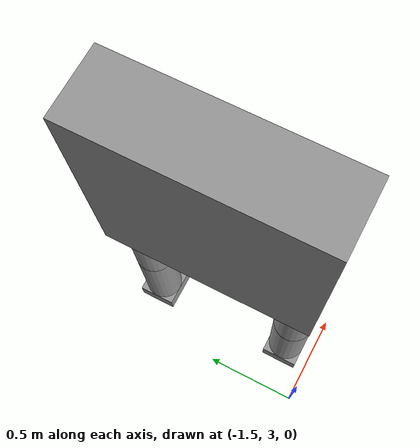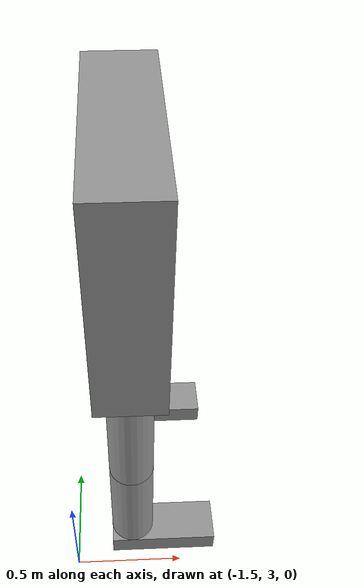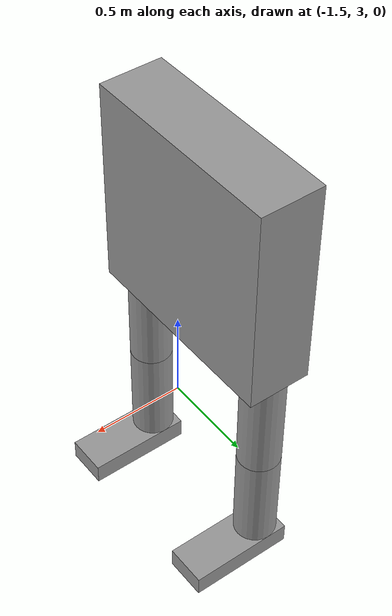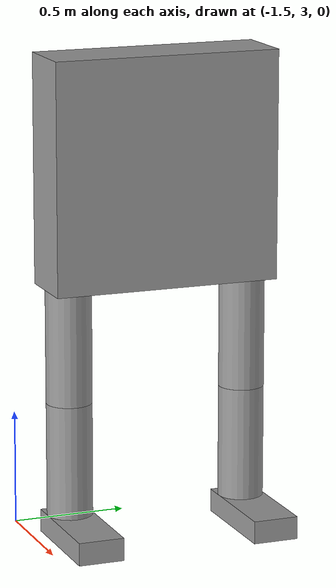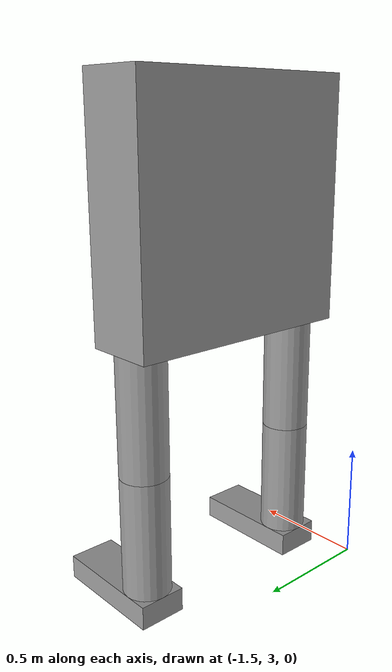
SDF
<?xml version='1.0'?>
<sdf version='1.6'>
  <model name='HumanoidRobot'>
    <link name='link_0'>
      <pose frame=''>-1.22891 3.55741 1.6 0 -0 0</pose>
      <inertial>
        <mass>1</mass>
        <inertia>
          <ixx>0.166667</ixx>
          <ixy>0</ixy>
          <ixz>0</ixz>
          <iyy>0.166667</iyy>
          <iyz>0</iyz>
          <izz>0.166667</izz>
        </inertia>
        <pose frame=''>0 0 0 0 -0 0</pose>
      </inertial>
      <gravity>1</gravity>
      <self_collide>0</self_collide>
      <kinematic>0</kinematic>
      <visual name='visual'>
        <pose frame=''>0 0 0 0 -0 0</pose>
        <geometry>
          <box>
            <size>0.3 1 1</size>
          </box>
        </geometry>
        <material>
          <lighting>1</lighting>
          <script>
            <uri>file://media/materials/scripts/gazebo.material</uri>
            <name>Gazebo/Grey</name>
          </script>
          <shader type='pixel'>
            <normal_map>__default__</normal_map>
          </shader>
          <ambient>0.3 0.3 0.3 1</ambient>
          <diffuse>0.7 0.7 0.7 1</diffuse>
          <specular>0.01 0.01 0.01 1</specular>
          <emissive>0 0 0 1</emissive>
        </material>
        <transparency>0</transparency>
        <cast_shadows>1</cast_shadows>
      </visual>
      <collision name='collision'>
        <laser_retro>0</laser_retro>
        <max_contacts>10</max_contacts>
        <pose frame=''>0 0 0 0 -0 0</pose>
        <geometry>
          <box>
            <size>0.3 1 1</size>
          </box>
        </geometry>
        <surface>
          <friction>
            <ode>
              <mu>1</mu>
              <mu2>1</mu2>
              <fdir1>0 0 0</fdir1>
              <slip1>0</slip1>
              <slip2>0</slip2>
            </ode>
            <torsional>
              <coefficient>1</coefficient>
              <patch_radius>0</patch_radius>
              <surface_radius>0</surface_radius>
              <use_patch_radius>1</use_patch_radius>
              <ode>
                <slip>0</slip>
              </ode>
            </torsional>
          </friction>
          <bounce>
            <restitution_coefficient>0</restitution_coefficient>
            <threshold>1e+06</threshold>
          </bounce>
          <contact>
            <collide_without_contact>0</collide_without_contact>
            <collide_without_contact_bitmask>1</collide_without_contact_bitmask>
            <collide_bitmask>1</collide_bitmask>
            <ode>
              <soft_cfm>0</soft_cfm>
              <soft_erp>0.2</soft_erp>
              <kp>1e+13</kp>
              <kd>1</kd>
              <max_vel>0.01</max_vel>
              <min_depth>0</min_depth>
            </ode>
            <bullet>
              <split_impulse>1</split_impulse>
              <split_impulse_penetration_threshold>-0.01</split_impulse_penetration_threshold>
              <soft_cfm>0</soft_cfm>
              <soft_erp>0.2</soft_erp>
              <kp>1e+13</kp>
              <kd>1</kd>
            </bullet>
          </contact>
        </surface>
      </collision>
    </link>
    <link name='link_1'>
      <pose frame=''>-1.22891 3.15741 0.849998 0 -0 0</pose>
      <inertial>
        <mass>1</mass>
        <inertia>
          <ixx>0.145833</ixx>
          <ixy>0</ixy>
          <ixz>0</ixz>
          <iyy>0.145833</iyy>
          <iyz>0</iyz>
          <izz>0.125</izz>
        </inertia>
        <pose frame=''>0 0 0 0 -0 0</pose>
      </inertial>
      <gravity>1</gravity>
      <self_collide>0</self_collide>
      <kinematic>0</kinematic>
      <visual name='visual'>
        <pose frame=''>0 0 0 0 -0 0</pose>
        <geometry>
          <cylinder>
            <radius>0.1</radius>
            <length>0.5</length>
          </cylinder>
        </geometry>
        <material>
          <lighting>1</lighting>
          <script>
            <uri>file://media/materials/scripts/gazebo.material</uri>
            <name>Gazebo/Grey</name>
          </script>
          <shader type='pixel'>
            <normal_map>__default__</normal_map>
          </shader>
          <ambient>0.3 0.3 0.3 1</ambient>
          <diffuse>0.7 0.7 0.7 1</diffuse>
          <specular>0.01 0.01 0.01 1</specular>
          <emissive>0 0 0 1</emissive>
        </material>
        <transparency>0</transparency>
        <cast_shadows>1</cast_shadows>
      </visual>
      <collision name='collision'>
        <laser_retro>0</laser_retro>
        <max_contacts>10</max_contacts>
        <pose frame=''>0 0 0 0 -0 0</pose>
        <geometry>
          <cylinder>
            <radius>0.1</radius>
            <length>0.5</length>
          </cylinder>
        </geometry>
        <surface>
          <friction>
            <ode>
              <mu>1</mu>
              <mu2>1</mu2>
              <fdir1>0 0 0</fdir1>
              <slip1>0</slip1>
              <slip2>0</slip2>
            </ode>
            <torsional>
              <coefficient>1</coefficient>
              <patch_radius>0</patch_radius>
              <surface_radius>0</surface_radius>
              <use_patch_radius>1</use_patch_radius>
              <ode>
                <slip>0</slip>
              </ode>
            </torsional>
          </friction>
          <bounce>
            <restitution_coefficient>0</restitution_coefficient>
            <threshold>1e+06</threshold>
          </bounce>
          <contact>
            <collide_without_contact>0</collide_without_contact>
            <collide_without_contact_bitmask>1</collide_without_contact_bitmask>
            <collide_bitmask>1</collide_bitmask>
            <ode>
              <soft_cfm>0</soft_cfm>
              <soft_erp>0.2</soft_erp>
              <kp>1e+13</kp>
              <kd>1</kd>
              <max_vel>0.01</max_vel>
              <min_depth>0</min_depth>
            </ode>
            <bullet>
              <split_impulse>1</split_impulse>
              <split_impulse_penetration_threshold>-0.01</split_impulse_penetration_threshold>
              <soft_cfm>0</soft_cfm>
              <soft_erp>0.2</soft_erp>
              <kp>1e+13</kp>
              <kd>1</kd>
            </bullet>
          </contact>
        </surface>
      </collision>
    </link>
    <link name='link_1_clone'>
      <pose frame=''>-1.22891 3.95741 0.849998 0 -0 0</pose>
      <inertial>
        <mass>1</mass>
        <inertia>
          <ixx>0.145833</ixx>
          <ixy>0</ixy>
          <ixz>0</ixz>
          <iyy>0.145833</iyy>
          <iyz>0</iyz>
          <izz>0.125</izz>
        </inertia>
        <pose frame=''>0 0 0 0 -0 0</pose>
      </inertial>
      <self_collide>0</self_collide>
      <kinematic>0</kinematic>
      <gravity>1</gravity>
      <visual name='visual'>
        <pose frame=''>0 0 0 0 -0 0</pose>
        <geometry>
          <cylinder>
            <radius>0.1</radius>
            <length>0.5</length>
          </cylinder>
        </geometry>
        <material>
          <lighting>1</lighting>
          <script>
            <uri>file://media/materials/scripts/gazebo.material</uri>
            <name>Gazebo/Grey</name>
          </script>
          <shader type='pixel'>
            <normal_map>__default__</normal_map>
          </shader>
          <ambient>0.3 0.3 0.3 1</ambient>
          <diffuse>0.7 0.7 0.7 1</diffuse>
          <specular>0.01 0.01 0.01 1</specular>
          <emissive>0 0 0 1</emissive>
        </material>
        <transparency>0</transparency>
        <cast_shadows>1</cast_shadows>
      </visual>
      <collision name='collision'>
        <laser_retro>0</laser_retro>
        <max_contacts>10</max_contacts>
        <pose frame=''>0 0 0 0 -0 0</pose>
        <geometry>
          <cylinder>
            <radius>0.1</radius>
            <length>0.5</length>
          </cylinder>
        </geometry>
        <surface>
          <friction>
            <ode>
              <mu>1</mu>
              <mu2>1</mu2>
              <fdir1>0 0 0</fdir1>
              <slip1>0</slip1>
              <slip2>0</slip2>
            </ode>
            <torsional>
              <coefficient>1</coefficient>
              <patch_radius>0</patch_radius>
              <surface_radius>0</surface_radius>
              <use_patch_radius>1</use_patch_radius>
              <ode>
                <slip>0</slip>
              </ode>
            </torsional>
          </friction>
          <bounce>
            <restitution_coefficient>0</restitution_coefficient>
            <threshold>1e+06</threshold>
          </bounce>
          <contact>
            <collide_without_contact>0</collide_without_contact>
            <collide_without_contact_bitmask>1</collide_without_contact_bitmask>
            <collide_bitmask>1</collide_bitmask>
            <ode>
              <soft_cfm>0</soft_cfm>
              <soft_erp>0.2</soft_erp>
              <kp>1e+13</kp>
              <kd>1</kd>
              <max_vel>0.01</max_vel>
              <min_depth>0</min_depth>
            </ode>
            <bullet>
              <split_impulse>1</split_impulse>
              <split_impulse_penetration_threshold>-0.01</split_impulse_penetration_threshold>
              <soft_cfm>0</soft_cfm>
              <soft_erp>0.2</soft_erp>
              <kp>1e+13</kp>
              <kd>1</kd>
            </bullet>
          </contact>
        </surface>
      </collision>
    </link>
    <link name='link_1_clone_0'>
      <pose frame=''>-1.22891 3.15741 0.349998 0 -0 0</pose>
      <inertial>
        <mass>1</mass>
        <inertia>
          <ixx>0.145833</ixx>
          <ixy>0</ixy>
          <ixz>0</ixz>
          <iyy>0.145833</iyy>
          <iyz>0</iyz>
          <izz>0.125</izz>
        </inertia>
        <pose frame=''>0 0 0 0 -0 0</pose>
      </inertial>
      <self_collide>0</self_collide>
      <kinematic>0</kinematic>
      <gravity>1</gravity>
      <visual name='visual'>
        <pose frame=''>0 0 0 0 -0 0</pose>
        <geometry>
          <cylinder>
            <radius>0.1</radius>
            <length>0.5</length>
          </cylinder>
        </geometry>
        <material>
          <lighting>1</lighting>
          <script>
            <uri>file://media/materials/scripts/gazebo.material</uri>
            <name>Gazebo/Grey</name>
          </script>
          <shader type='pixel'>
            <normal_map>__default__</normal_map>
          </shader>
          <ambient>0.3 0.3 0.3 1</ambient>
          <diffuse>0.7 0.7 0.7 1</diffuse>
          <specular>0.01 0.01 0.01 1</specular>
          <emissive>0 0 0 1</emissive>
        </material>
        <transparency>0</transparency>
        <cast_shadows>1</cast_shadows>
      </visual>
      <collision name='collision'>
        <laser_retro>0</laser_retro>
        <max_contacts>10</max_contacts>
        <pose frame=''>0 0 0 0 -0 0</pose>
        <geometry>
          <cylinder>
            <radius>0.1</radius>
            <length>0.5</length>
          </cylinder>
        </geometry>
        <surface>
          <friction>
            <ode>
              <mu>1</mu>
              <mu2>1</mu2>
              <fdir1>0 0 0</fdir1>
              <slip1>0</slip1>
              <slip2>0</slip2>
            </ode>
            <torsional>
              <coefficient>1</coefficient>
              <patch_radius>0</patch_radius>
              <surface_radius>0</surface_radius>
              <use_patch_radius>1</use_patch_radius>
              <ode>
                <slip>0</slip>
              </ode>
            </torsional>
          </friction>
          <bounce>
            <restitution_coefficient>0</restitution_coefficient>
            <threshold>1e+06</threshold>
          </bounce>
          <contact>
            <collide_without_contact>0</collide_without_contact>
            <collide_without_contact_bitmask>1</collide_without_contact_bitmask>
            <collide_bitmask>1</collide_bitmask>
            <ode>
              <soft_cfm>0</soft_cfm>
              <soft_erp>0.2</soft_erp>
              <kp>1e+13</kp>
              <kd>1</kd>
              <max_vel>0.01</max_vel>
              <min_depth>0</min_depth>
            </ode>
            <bullet>
              <split_impulse>1</split_impulse>
              <split_impulse_penetration_threshold>-0.01</split_impulse_penetration_threshold>
              <soft_cfm>0</soft_cfm>
              <soft_erp>0.2</soft_erp>
              <kp>1e+13</kp>
              <kd>1</kd>
            </bullet>
          </contact>
        </surface>
      </collision>
    </link>
    <link name='link_1_clone_1'>
      <pose frame=''>-1.22891 3.95741 0.349998 0 -0 0</pose>
      <inertial>
        <mass>1</mass>
        <inertia>
          <ixx>0.145833</ixx>
          <ixy>0</ixy>
          <ixz>0</ixz>
          <iyy>0.145833</iyy>
          <iyz>0</iyz>
          <izz>0.125</izz>
        </inertia>
        <pose frame=''>0 0 0 0 -0 0</pose>
      </inertial>
      <self_collide>0</self_collide>
      <kinematic>0</kinematic>
      <gravity>1</gravity>
      <visual name='visual'>
        <pose frame=''>0 0 0 0 -0 0</pose>
        <geometry>
          <cylinder>
            <radius>0.1</radius>
            <length>0.5</length>
          </cylinder>
        </geometry>
        <material>
          <lighting>1</lighting>
          <script>
            <uri>file://media/materials/scripts/gazebo.material</uri>
            <name>Gazebo/Grey</name>
          </script>
          <shader type='pixel'>
            <normal_map>__default__</normal_map>
          </shader>
          <ambient>0.3 0.3 0.3 1</ambient>
          <diffuse>0.7 0.7 0.7 1</diffuse>
          <specular>0.01 0.01 0.01 1</specular>
          <emissive>0 0 0 1</emissive>
        </material>
        <transparency>0</transparency>
        <cast_shadows>1</cast_shadows>
      </visual>
      <collision name='collision'>
        <laser_retro>0</laser_retro>
        <max_contacts>10</max_contacts>
        <pose frame=''>0 0 0 0 -0 0</pose>
        <geometry>
          <cylinder>
            <radius>0.1</radius>
            <length>0.5</length>
          </cylinder>
        </geometry>
        <surface>
          <friction>
            <ode>
              <mu>1</mu>
              <mu2>1</mu2>
              <fdir1>0 0 0</fdir1>
              <slip1>0</slip1>
              <slip2>0</slip2>
            </ode>
            <torsional>
              <coefficient>1</coefficient>
              <patch_radius>0</patch_radius>
              <surface_radius>0</surface_radius>
              <use_patch_radius>1</use_patch_radius>
              <ode>
                <slip>0</slip>
              </ode>
            </torsional>
          </friction>
          <bounce>
            <restitution_coefficient>0</restitution_coefficient>
            <threshold>1e+06</threshold>
          </bounce>
          <contact>
            <collide_without_contact>0</collide_without_contact>
            <collide_without_contact_bitmask>1</collide_without_contact_bitmask>
            <collide_bitmask>1</collide_bitmask>
            <ode>
              <soft_cfm>0</soft_cfm>
              <soft_erp>0.2</soft_erp>
              <kp>1e+13</kp>
              <kd>1</kd>
              <max_vel>0.01</max_vel>
              <min_depth>0</min_depth>
            </ode>
            <bullet>
              <split_impulse>1</split_impulse>
              <split_impulse_penetration_threshold>-0.01</split_impulse_penetration_threshold>
              <soft_cfm>0</soft_cfm>
              <soft_erp>0.2</soft_erp>
              <kp>1e+13</kp>
              <kd>1</kd>
            </bullet>
          </contact>
        </surface>
      </collision>
    </link>
    <link name='link_4'>
      <pose frame=''>-1.07891 3.95741 0.049998 0 -0 0</pose>
      <inertial>
        <mass>1</mass>
        <inertia>
          <ixx>0.166667</ixx>
          <ixy>0</ixy>
          <ixz>0</ixz>
          <iyy>0.166667</iyy>
          <iyz>0</iyz>
          <izz>0.166667</izz>
        </inertia>
        <pose frame=''>0 0 0 0 -0 0</pose>
      </inertial>
      <gravity>1</gravity>
      <self_collide>0</self_collide>
      <kinematic>0</kinematic>
      <visual name='visual'>
        <pose frame=''>0 0 0 0 -0 0</pose>
        <geometry>
          <box>
            <size>0.5 0.2 0.1</size>
          </box>
        </geometry>
        <material>
          <lighting>1</lighting>
          <script>
            <uri>file://media/materials/scripts/gazebo.material</uri>
            <name>Gazebo/Grey</name>
          </script>
          <shader type='pixel'>
            <normal_map>__default__</normal_map>
          </shader>
          <ambient>0.3 0.3 0.3 1</ambient>
          <diffuse>0.7 0.7 0.7 1</diffuse>
          <specular>0.01 0.01 0.01 1</specular>
          <emissive>0 0 0 1</emissive>
        </material>
        <transparency>0</transparency>
        <cast_shadows>1</cast_shadows>
      </visual>
      <collision name='collision'>
        <laser_retro>0</laser_retro>
        <max_contacts>10</max_contacts>
        <pose frame=''>0 0 0 0 -0 0</pose>
        <geometry>
          <box>
            <size>0.5 0.2 0.1</size>
          </box>
        </geometry>
        <surface>
          <friction>
            <ode>
              <mu>1</mu>
              <mu2>1</mu2>
              <fdir1>0 0 0</fdir1>
              <slip1>0</slip1>
              <slip2>0</slip2>
            </ode>
            <torsional>
              <coefficient>1</coefficient>
              <patch_radius>0</patch_radius>
              <surface_radius>0</surface_radius>
              <use_patch_radius>1</use_patch_radius>
              <ode>
                <slip>0</slip>
              </ode>
            </torsional>
          </friction>
          <bounce>
            <restitution_coefficient>0</restitution_coefficient>
            <threshold>1e+06</threshold>
          </bounce>
          <contact>
            <collide_without_contact>0</collide_without_contact>
            <collide_without_contact_bitmask>1</collide_without_contact_bitmask>
            <collide_bitmask>1</collide_bitmask>
            <ode>
              <soft_cfm>0</soft_cfm>
              <soft_erp>0.2</soft_erp>
              <kp>1e+13</kp>
              <kd>1</kd>
              <max_vel>0.01</max_vel>
              <min_depth>0</min_depth>
            </ode>
            <bullet>
              <split_impulse>1</split_impulse>
              <split_impulse_penetration_threshold>-0.01</split_impulse_penetration_threshold>
              <soft_cfm>0</soft_cfm>
              <soft_erp>0.2</soft_erp>
              <kp>1e+13</kp>
              <kd>1</kd>
            </bullet>
          </contact>
        </surface>
      </collision>
    </link>
    <link name='link_4_clone'>
      <pose frame=''>-1.07891 3.15741 0.049998 0 -0 0</pose>
      <inertial>
        <mass>1</mass>
        <inertia>
          <ixx>0.166667</ixx>
          <ixy>0</ixy>
          <ixz>0</ixz>
          <iyy>0.166667</iyy>
          <iyz>0</iyz>
          <izz>0.166667</izz>
        </inertia>
        <pose frame=''>0 0 0 0 -0 0</pose>
      </inertial>
      <self_collide>0</self_collide>
      <kinematic>0</kinematic>
      <visual name='visual'>
        <pose frame=''>0 0 0 0 -0 0</pose>
        <geometry>
          <box>
            <size>0.5 0.2 0.1</size>
          </box>
        </geometry>
        <material>
          <lighting>1</lighting>
          <script>
            <uri>file://media/materials/scripts/gazebo.material</uri>
            <name>Gazebo/Grey</name>
          </script>
          <shader type='pixel'>
            <normal_map>__default__</normal_map>
          </shader>
          <ambient>0.3 0.3 0.3 1</ambient>
          <diffuse>0.7 0.7 0.7 1</diffuse>
          <specular>0.01 0.01 0.01 1</specular>
          <emissive>0 0 0 1</emissive>
        </material>
        <transparency>0</transparency>
        <cast_shadows>1</cast_shadows>
      </visual>
      <collision name='collision'>
        <laser_retro>0</laser_retro>
        <max_contacts>10</max_contacts>
        <pose frame=''>0 0 0 0 -0 0</pose>
        <geometry>
          <box>
            <size>0.5 0.2 0.1</size>
          </box>
        </geometry>
        <surface>
          <friction>
            <ode>
              <mu>1</mu>
              <mu2>1</mu2>
              <fdir1>0 0 0</fdir1>
              <slip1>0</slip1>
              <slip2>0</slip2>
            </ode>
            <torsional>
              <coefficient>1</coefficient>
              <patch_radius>0</patch_radius>
              <surface_radius>0</surface_radius>
              <use_patch_radius>1</use_patch_radius>
              <ode>
                <slip>0</slip>
              </ode>
            </torsional>
          </friction>
          <bounce>
            <restitution_coefficient>0</restitution_coefficient>
            <threshold>1e+06</threshold>
          </bounce>
          <contact>
            <collide_without_contact>0</collide_without_contact>
            <collide_without_contact_bitmask>1</collide_without_contact_bitmask>
            <collide_bitmask>1</collide_bitmask>
            <ode>
              <soft_cfm>0</soft_cfm>
              <soft_erp>0.2</soft_erp>
              <kp>1e+13</kp>
              <kd>1</kd>
              <max_vel>0.01</max_vel>
              <min_depth>0</min_depth>
            </ode>
            <bullet>
              <split_impulse>1</split_impulse>
              <split_impulse_penetration_threshold>-0.01</split_impulse_penetration_threshold>
              <soft_cfm>0</soft_cfm>
              <soft_erp>0.2</soft_erp>
              <kp>1e+13</kp>
              <kd>1</kd>
            </bullet>
          </contact>
        </surface>
      </collision>
    </link>
    <joint name='link_0_JOINT_0' type='revolute'>
      <parent>link_0</parent>
      <child>link_1</child>
      <pose frame=''>0 0 0.25 0 0.03 0</pose>
      <axis>
        <xyz>0 0 1</xyz>
        <use_parent_model_frame>1</use_parent_model_frame>
        <limit>
          <lower>-1.79769e+308</lower>
          <upper>1.79769e+308</upper>
          <effort>-1</effort>
          <velocity>-1</velocity>
        </limit>
        <dynamics>
          <spring_reference>0</spring_reference>
          <spring_stiffness>0</spring_stiffness>
          <damping>0</damping>
          <friction>0</friction>
        </dynamics>
      </axis>
      <physics>
        <ode>
          <limit>
            <cfm>0</cfm>
            <erp>0.2</erp>
          </limit>
          <suspension>
            <cfm>0</cfm>
            <erp>0.2</erp>
          </suspension>
        </ode>
      </physics>
    </joint>
    <joint name='link_0_JOINT_1' type='revolute'>
      <parent>link_0</parent>
      <child>link_1_clone</child>
      <pose frame=''>0 0 0.25 0 -0 0</pose>
      <axis>
        <xyz>0 0 1</xyz>
        <use_parent_model_frame>0</use_parent_model_frame>
        <limit>
          <lower>-1.79769e+308</lower>
          <upper>1.79769e+308</upper>
          <effort>-1</effort>
          <velocity>-1</velocity>
        </limit>
        <dynamics>
          <spring_reference>0</spring_reference>
          <spring_stiffness>0</spring_stiffness>
          <damping>0</damping>
          <friction>0</friction>
        </dynamics>
      </axis>
      <physics>
        <ode>
          <limit>
            <cfm>0</cfm>
            <erp>0.2</erp>
          </limit>
          <suspension>
            <cfm>0</cfm>
            <erp>0.2</erp>
          </suspension>
        </ode>
      </physics>
    </joint>
    <joint name='link_1_JOINT_2' type='revolute'>
      <parent>link_1</parent>
      <child>link_1_clone_0</child>
      <pose frame=''>0 0 0.25 0 -0 0</pose>
      <axis>
        <xyz>0 0 1</xyz>
        <use_parent_model_frame>0</use_parent_model_frame>
        <limit>
          <lower>-1.79769e+308</lower>
          <upper>1.79769e+308</upper>
          <effort>-1</effort>
          <velocity>-1</velocity>
        </limit>
        <dynamics>
          <spring_reference>0</spring_reference>
          <spring_stiffness>0</spring_stiffness>
          <damping>0</damping>
          <friction>0</friction>
        </dynamics>
      </axis>
      <physics>
        <ode>
          <limit>
            <cfm>0</cfm>
            <erp>0.2</erp>
          </limit>
          <suspension>
            <cfm>0</cfm>
            <erp>0.2</erp>
          </suspension>
        </ode>
      </physics>
    </joint>
    <joint name='link_1_clone_0_JOINT_4' type='revolute'>
      <parent>link_1_clone_0</parent>
      <child>link_4_clone</child>
      <pose frame=''>-0.15 0 0 0 -0 0</pose>
      <axis>
        <xyz>0 0 1</xyz>
        <use_parent_model_frame>0</use_parent_model_frame>
        <limit>
          <lower>-1.79769e+308</lower>
          <upper>1.79769e+308</upper>
          <effort>-1</effort>
          <velocity>-1</velocity>
        </limit>
        <dynamics>
          <spring_reference>0</spring_reference>
          <spring_stiffness>0</spring_stiffness>
          <damping>0</damping>
          <friction>0</friction>
        </dynamics>
      </axis>
      <physics>
        <ode>
          <limit>
            <cfm>0</cfm>
            <erp>0.2</erp>
          </limit>
          <suspension>
            <cfm>0</cfm>
            <erp>0.2</erp>
          </suspension>
        </ode>
      </physics>
    </joint>
    <joint name='link_1_clone_1_JOINT_5' type='revolute'>
      <parent>link_1_clone_1</parent>
      <child>link_4</child>
      <pose frame=''>-0.15 0 0 0 -0 0</pose>
      <axis>
        <xyz>0 0 1</xyz>
        <use_parent_model_frame>0</use_parent_model_frame>
        <limit>
          <lower>-1.79769e+308</lower>
          <upper>1.79769e+308</upper>
          <effort>-1</effort>
          <velocity>-1</velocity>
        </limit>
        <dynamics>
          <spring_reference>0</spring_reference>
          <spring_stiffness>0</spring_stiffness>
          <damping>0</damping>
        </dynamics>
      </axis>
      <physics>
        <ode>
          <limit>
            <cfm>0</cfm>
            <erp>0.2</erp>
          </limit>
          <suspension>
            <cfm>0</cfm>
            <erp>0.2</erp>
          </suspension>
        </ode>
      </physics>
    </joint>
    <joint name='link_1_clone_JOINT_3' type='revolute'>
      <parent>link_1_clone</parent>
      <child>link_1_clone_1</child>
      <pose frame=''>0 0 0.25 0 -0 0</pose>
      <axis>
        <xyz>1 0 0</xyz>
        <use_parent_model_frame>0</use_parent_model_frame>
        <limit>
          <lower>-1.79769e+308</lower>
          <upper>1.79769e+308</upper>
          <effort>-1</effort>
          <velocity>-1</velocity>
        </limit>
        <dynamics>
          <spring_reference>0</spring_reference>
          <spring_stiffness>0</spring_stiffness>
          <damping>0</damping>
          <friction>0</friction>
        </dynamics>
      </axis>
      <physics>
        <ode>
          <limit>
            <cfm>0</cfm>
            <erp>0.2</erp>
          </limit>
          <suspension>
            <cfm>0</cfm>
            <erp>0.2</erp>
          </suspension>
        </ode>
      </physics>
    </joint>
    <static>0</static>
    <allow_auto_disable>1</allow_auto_disable>
  </model>
</sdf>
